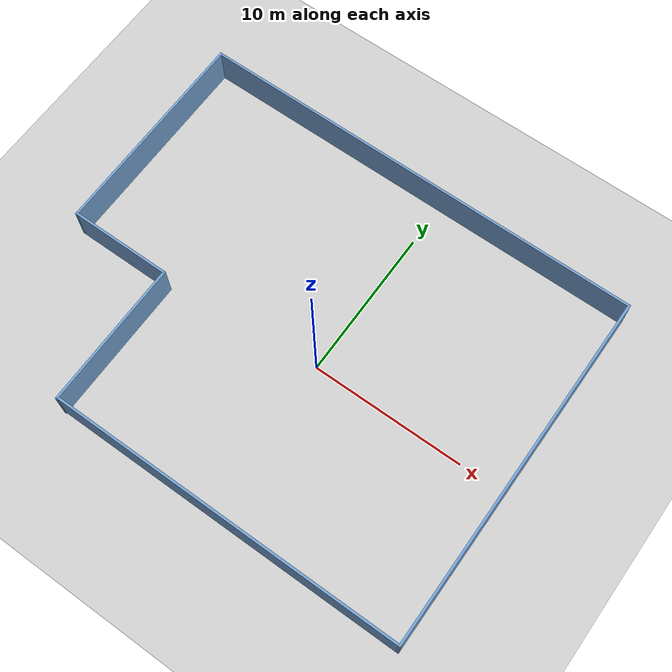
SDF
<sdf version="1.7">
 <world name="default">
  <model name="ground_plane">
   <static>1</static>
   <link name="link">
    <collision name="collision">
     <geometry><plane><normal>0 0 1</normal><size>100 100</size></plane></geometry>
     <surface><friction><ode><mu>100</mu><mu2>50</mu2></ode></friction></surface>
    </collision>
    <visual name="visual">
     <cast_shadows>0</cast_shadows>
     <geometry><plane><normal>0 0 1</normal><size>100 100</size></plane></geometry>
     <material>
      <script><uri>file://media/materials/scripts/gazebo.material</uri><name>Gazebo/Grey</name></script>
     </material>
    </visual>
   </link>
  </model>
  <model name="bluewall">
   <pose>-1.83984 1.1037 0 0 -0 0</pose>
   <link name="Wall_0">
    <collision name="Wall_0_Collision">
     <geometry><box><size>9.59305 0.15 2.5</size></box></geometry>
     <pose>0 0 1.25 0 -0 0</pose>
    </collision>
    <visual name="Wall_0_Visual">
     <pose>0 0 1.25 0 -0 0</pose>
     <geometry><box><size>9.59305 0.15 2.5</size></box></geometry>
     <material>
      <script><uri>file://media/materials/scripts/gazebo.material</uri><name>Gazebo/Grey</name></script>
      <ambient>0.447059 0.623529 0.811765 1</ambient>
     </material>
     <meta><layer>0</layer></meta>
    </visual>
    <pose>-8.25016 -6.92523 0 0 -0 -1.5708</pose>
   </link>
   <link name="Wall_2">
    <collision name="Wall_2_Collision">
     <geometry><box><size>6.75 0.15 2.5</size></box></geometry>
     <pose>0 0 1.25 0 -0 0</pose>
    </collision>
    <visual name="Wall_2_Visual">
     <pose>0 0 1.25 0 -0 0</pose>
     <geometry><box><size>6.75 0.15 2.5</size></box></geometry>
     <material>
      <script><uri>file://media/materials/scripts/gazebo.material</uri><name>Gazebo/Grey</name></script>
      <ambient>0.447059 0.623529 0.811765 1</ambient>
     </material>
     <meta><layer>0</layer></meta>
    </visual>
    <pose>-11.5502 -2.2037 0 0 -0 3.14159</pose>
   </link>
   <link name="Wall_3">
    <collision name="Wall_3_Collision">
     <geometry><box><size>14 0.15 2.5</size></box></geometry>
     <pose>0 0 1.25 0 -0 0</pose>
    </collision>
    <visual name="Wall_3_Visual">
     <pose>0 0 1.25 0 -0 0</pose>
     <geometry><box><size>14 0.15 2.5</size></box></geometry>
     <material>
      <script><uri>file://media/materials/scripts/gazebo.material</uri><name>Gazebo/Grey</name></script>
      <ambient>0.447059 0.623529 0.811765 1</ambient>
     </material>
     <meta><layer>0</layer></meta>
    </visual>
    <pose>-14.8502 4.7213 0 0 -0 1.5708</pose>
   </link>
   <link name="Wall_4">
    <collision name="Wall_4_Collision">
     <geometry><box><size>29.75 0.15 2.5</size></box></geometry>
     <pose>0 0 1.25 0 -0 0</pose>
    </collision>
    <visual name="Wall_4_Visual">
     <pose>0 0 1.25 0 -0 0</pose>
     <geometry><box><size>29.75 0.15 2.5</size></box></geometry>
     <material>
      <script><uri>file://media/materials/scripts/gazebo.material</uri><name>Gazebo/Grey</name></script>
      <ambient>0.447059 0.623529 0.811765 1</ambient>
     </material>
     <meta><layer>0</layer></meta>
    </visual>
    <pose>-0.05016 11.6463 0 0 -0 0</pose>
   </link>
   <link name="Wall_5">
    <collision name="Wall_5_Collision">
     <geometry><box><size>23.397 0.15 2.5</size></box></geometry>
     <pose>0 0 1.25 0 -0 0</pose>
    </collision>
    <visual name="Wall_5_Visual">
     <pose>0 0 1.25 0 -0 0</pose>
     <geometry><box><size>23.397 0.15 2.5</size></box></geometry>
     <material>
      <script><uri>file://media/materials/scripts/gazebo.material</uri><name>Gazebo/Grey</name></script>
      <ambient>0.447059 0.623529 0.811765 1</ambient>
     </material>
     <meta><layer>0</layer></meta>
    </visual>
    <pose>14.7998 0.023034 0 0 -0 -1.56649</pose>
   </link>
   <link name="Wall_6">
    <collision name="Wall_6_Collision">
     <geometry><box><size>23.25 0.15 2.5</size></box></geometry>
     <pose>0 0 1.25 0 -0 0</pose>
    </collision>
    <visual name="Wall_6_Visual">
     <pose>0 0 1.25 0 -0 0</pose>
     <geometry><box><size>23.25 0.15 2.5</size></box></geometry>
     <material>
      <script><uri>file://media/materials/scripts/gazebo.material</uri><name>Gazebo/Grey</name></script>
      <ambient>0.447059 0.623529 0.811765 1</ambient>
     </material>
     <meta><layer>0</layer></meta>
    </visual>
    <pose>3.29984 -11.6002 0 0 -0 3.14159</pose>
   </link>
   <static>1</static>
  </model>
  <model name="Beige_Pavement_1">
   <link name="link_0">
    <inertial>
     <mass>1</mass>
     <inertia>
      <ixx>0.166667</ixx>
      <ixy>0</ixy>
      <ixz>0</ixz>
      <iyy>0.166667</iyy>
      <iyz>0</iyz>
      <izz>0.166667</izz>
     </inertia>
     <pose>0 0 -0.5 0 -0 0</pose>
    </inertial>
    <pose>0 0 -0.5 0 -0 0</pose>
    <visual name="visual">
     <pose>0 0 -0.5 0 -0 0</pose>
     <geometry><box><size>3 8 0.01</size></box></geometry>
     <material>
      <lighting>1</lighting>
      <script><uri>file://media/materials/scripts/gazebo.material</uri><name>Gazebo/Grey</name></script>
      <shader type="pixel"><normal_map>__default__</normal_map></shader>
      <ambient>0.914 0.725 0.431 1</ambient>
      <diffuse>0.7 0.7 0.7 1</diffuse>
      <specular>0.01 0.01 0.01 1</specular>
      <emissive>0 0 0 1</emissive>
     </material>
    </visual>
    <collision name="collision">
     <geometry><box><size>1 1 1</size></box></geometry>
     <surface>
      <friction>
       <ode><mu>1</mu><mu2>1</mu2><fdir1>0 0 0</fdir1><slip1>0</slip1><slip2>0</slip2></ode>
       <torsional>
        <coefficient>1</coefficient>
        <patch_radius>0</patch_radius>
        <surface_radius>0</surface_radius>
        <use_patch_radius>1</use_patch_radius>
        <ode><slip>0</slip></ode>
       </torsional>
      </friction>
      <bounce><restitution_coefficient>0</restitution_coefficient><threshold>1e+06</threshold></bounce>
      <contact>
       <collide_without_contact>0</collide_without_contact>
       <collide_without_contact_bitmask>1</collide_without_contact_bitmask>
       <collide_bitmask>1</collide_bitmask>
       <ode>
        <soft_cfm>0</soft_cfm>
        <soft_erp>0.2</soft_erp>
        <kp>1e+13</kp>
        <kd>1</kd>
        <max_vel>0.01</max_vel>
        <min_depth>0</min_depth>
       </ode>
       <bullet>
        <split_impulse>1</split_impulse>
        <split_impulse_penetration_threshold>-0.01</split_impulse_penetration_threshold>
        <soft_cfm>0</soft_cfm>
        <soft_erp>0.2</soft_erp>
        <kp>1e+13</kp>
        <kd>1</kd>
       </bullet>
      </contact>
     </surface>
    </collision>
   </link>
   <static>0</static>
   <pose>-6.68903 -1.75535 -0.5 0 -0 0</pose>
  </model>
  <model name="Beige_Pavement_5">
   <link name="link_0">
    <inertial>
     <mass>1</mass>
     <inertia>
      <ixx>0.166667</ixx>
      <ixy>0</ixy>
      <ixz>0</ixz>
      <iyy>0.166667</iyy>
      <iyz>0</iyz>
      <izz>0.166667</izz>
     </inertia>
     <pose>0 0 -0.5 0 -0 0</pose>
    </inertial>
    <pose>0 0 -0.5 0 -0 0</pose>
    <visual name="visual">
     <pose>0 0 -0.5 0 -0 0</pose>
     <geometry><box><size>3 8 0.01</size></box></geometry>
     <material>
      <lighting>1</lighting>
      <script><uri>file://media/materials/scripts/gazebo.material</uri><name>Gazebo/Grey</name></script>
      <shader type="pixel"><normal_map>__default__</normal_map></shader>
      <ambient>0.914 0.725 0.431 1</ambient>
      <diffuse>0.7 0.7 0.7 1</diffuse>
      <specular>0.01 0.01 0.01 1</specular>
      <emissive>0 0 0 1</emissive>
     </material>
    </visual>
    <collision name="collision">
     <geometry><box><size>1 1 1</size></box></geometry>
     <surface>
      <friction>
       <ode><mu>1</mu><mu2>1</mu2><fdir1>0 0 0</fdir1><slip1>0</slip1><slip2>0</slip2></ode>
       <torsional>
        <coefficient>1</coefficient>
        <patch_radius>0</patch_radius>
        <surface_radius>0</surface_radius>
        <use_patch_radius>1</use_patch_radius>
        <ode><slip>0</slip></ode>
       </torsional>
      </friction>
      <bounce><restitution_coefficient>0</restitution_coefficient><threshold>1e+06</threshold></bounce>
      <contact>
       <collide_without_contact>0</collide_without_contact>
       <collide_without_contact_bitmask>1</collide_without_contact_bitmask>
       <collide_bitmask>1</collide_bitmask>
       <ode>
        <soft_cfm>0</soft_cfm>
        <soft_erp>0.2</soft_erp>
        <kp>1e+13</kp>
        <kd>1</kd>
        <max_vel>0.01</max_vel>
        <min_depth>0</min_depth>
       </ode>
       <bullet>
        <split_impulse>1</split_impulse>
        <split_impulse_penetration_threshold>-0.01</split_impulse_penetration_threshold>
        <soft_cfm>0</soft_cfm>
        <soft_erp>0.2</soft_erp>
        <kp>1e+13</kp>
        <kd>1</kd>
       </bullet>
      </contact>
     </surface>
    </collision>
   </link>
   <static>0</static>
   <pose>-3.02899 5.77522 -0.5 0 0 -1.55144</pose>
  </model>
 </world>
</sdf>
